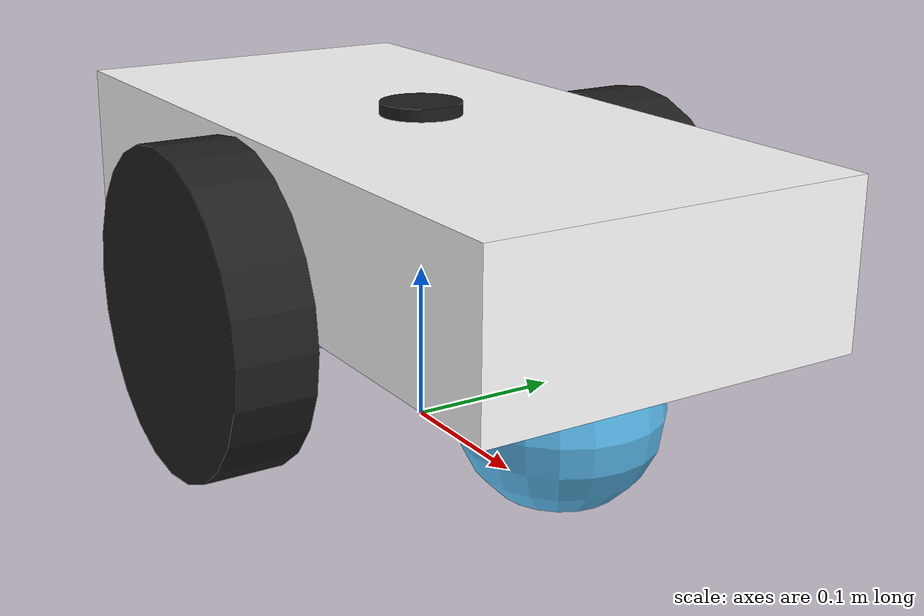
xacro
<?xml version="1.0"?>
<robot name="holonomic_robot" xmlns:xacro="http://www.ros.org/wiki/xacro">
  <xacro:property name="PI" value="3.1415926535897931" />
  <xacro:property name="wheel_radius" value="0.1" />
  <xacro:property name="wheel_width" value="0.05" />
  <xacro:property name="dummy_inertia" value="1e-09"/>

  <link name="base_link" >
    <origin xyz="0 0 0" rpy="0 0 0"/>
  </link>

  <link name="chassis">
    <origin xyz="0 0 .15" rpy="0 0 0"/>

    <collision name='chassis_base_collision'>
      <geometry>
        <box size="0.5 0.25 0.1"/>
      </geometry>
    </collision>

    <visual name='chassis_base_visual'>
      <geometry>
        <box size="0.5 0.24 0.1"/>
      </geometry>
      <material name="white">
         <color rgba="1 1 1 1"/>
      </material>
    </visual>

    <collision name='caster_collision_front'>
      <origin xyz="-0.15 0 -0.09" rpy="0 0 0"/>
      <geometry>
        <sphere radius=".06"/>
      </geometry>
      <surface>
        <friction>
          <ode>
            <mu>0</mu>
            <mu2>0</mu2>
            <slip1>0.0</slip1>
            <slip2>0.0</slip2>
          </ode>
        </friction>
      </surface>
    </collision>

    <visual name='caster_visual_front'>
      <origin xyz="-0.15 0 -0.09" rpy="0 0 0"/>
      <geometry>
        <sphere radius=".06"/>
      </geometry>
    </visual>

    <collision name='caster_collision_rear'>
      <origin xyz="0.15 0 -0.09" rpy="0 0 0"/>
      <geometry>
        <sphere radius=".06"/>
      </geometry>
      <surface>
        <friction>
          <ode>
            <mu>0</mu>
            <mu2>0</mu2>
            <slip1>0.0</slip1>
            <slip2>0.0</slip2>
          </ode>
        </friction>
      </surface>
    </collision>

    <visual name='caster_collision_rear'>
      <origin xyz="0.15 0 -0.09" rpy="0 0 0"/>
      <geometry>
        <sphere radius=".06"/>
      </geometry>
    </visual>

      <mass value="5" />
  </link>

  <joint name="chassis_joint" type="fixed">
    <origin xyz="0 0 .15" rpy="0 0 0"/>
    <parent link="base_link"/>
    <child link="chassis" />
  </joint>

  <link name="left_wheel">
    <origin xyz="0 0.15 0.1" rpy="${PI/2} 0 0"/>
    <collision>
      <geometry>
        <cylinder radius="${wheel_radius}" length="${wheel_width}"/>
      </geometry>
    </collision>
    <visual>
      <geometry>
        <cylinder radius="${wheel_radius}" length="${wheel_width}"/>
      </geometry>
      <material name="black" />
    </visual>
    <inertial>
      <mass value="1" />
      <inertia ixx="1.1175580e-05" ixy="-4.2369783e-11" ixz="-5.9381719e-09"
               iyy="1.1192413e-05" iyz="-1.4400107e-11"
               izz="2.0712558e-05" />
    </inertial>
  </link>

  <joint name="left_wheel_joint" type="continuous">
    <origin xyz="0 0.15 0.1" rpy="-${PI/2} 0 0"/>
    <parent link="base_link"/>
    <child link="left_wheel" />
    <axis xyz="0 1 0" />
  </joint>

  <link name="right_wheel">
    <origin xyz="0 -0.15 0.1" rpy="${PI/2} 0 0"/>
    <collision>
      <geometry>
        <cylinder radius="${wheel_radius}" length="${wheel_width}"/>
      </geometry>
    </collision>
    <visual>
      <geometry>
        <cylinder radius="${wheel_radius}" length="${wheel_width}"/>
      </geometry>
      <material name="black" />
    </visual>
    <inertial>
      <mass value="1" />
      <inertia ixx="1.1175580e-05" ixy="-4.2369783e-11" ixz="-5.9381719e-09"
               iyy="1.1192413e-05" iyz="-1.4400107e-11"
               izz="2.0712558e-05" />
    </inertial>
  </link>

  <joint name="right_wheel_joint" type="continuous">
    <origin xyz="0 -0.15 0.1" rpy="-${PI/2} 0 0"/>
    <parent link="base_link"/>
    <child link="right_wheel" />
    <axis xyz="0 1 0" />
  </joint>

  <link name="imu_link">
    <inertial>
      <mass value="0.001"/>
      <origin xyz="0 0 0" rpy="0 0 0"/>
      <inertia ixx="${dummy_inertia}" ixy="0.0" ixz="0.0" iyy="${dummy_inertia}" iyz="0.0" izz="${dummy_inertia}"/>
    </inertial>
  </link>
  <joint name="imu_joint" type="fixed">
    <parent link="chassis" />
    <child link="imu_link" />
  </joint>

  <link name="gps_link">
    <origin xyz="0 0 0.05" />
    <visual>
      <geometry>
        <cylinder radius="0.026" length="0.016" />
      </geometry>
      <material name="black" />
    </visual>
  </link>
  <joint name="navsat_joint" type="fixed">
    <origin xyz="0 0 0.05" />
    <parent link="chassis" />
    <child link="gps_link" />
  </joint>

</robot>
